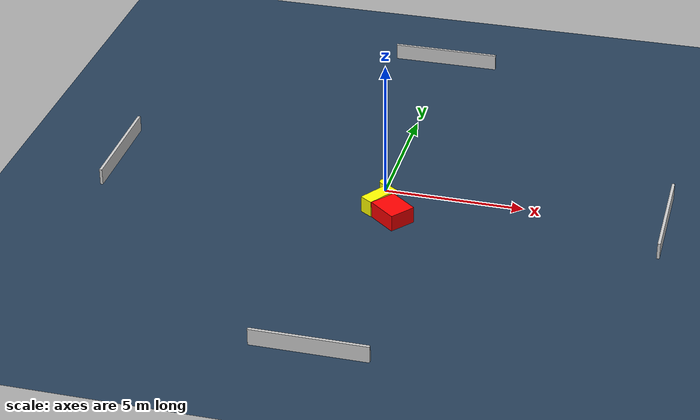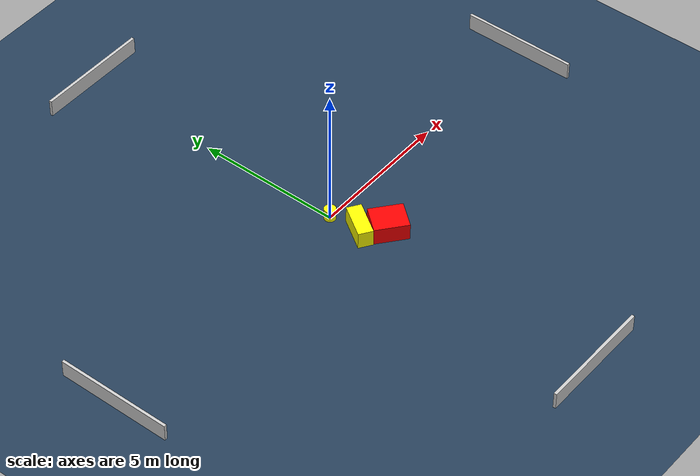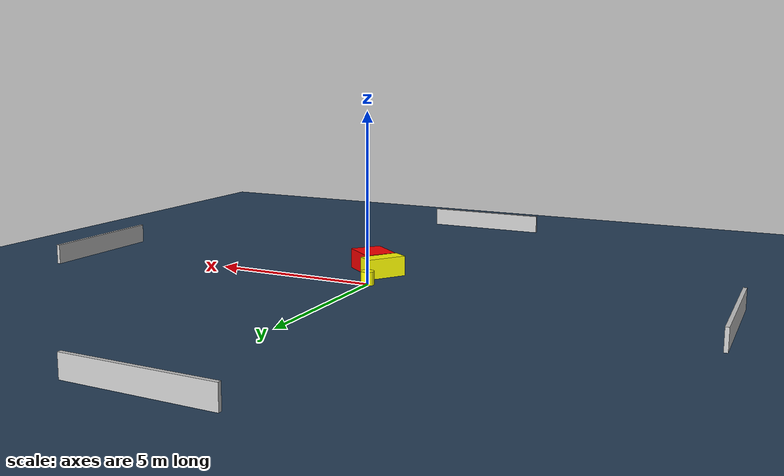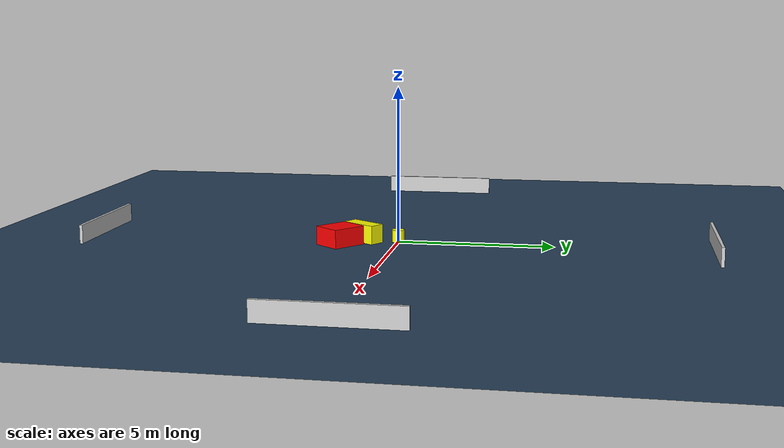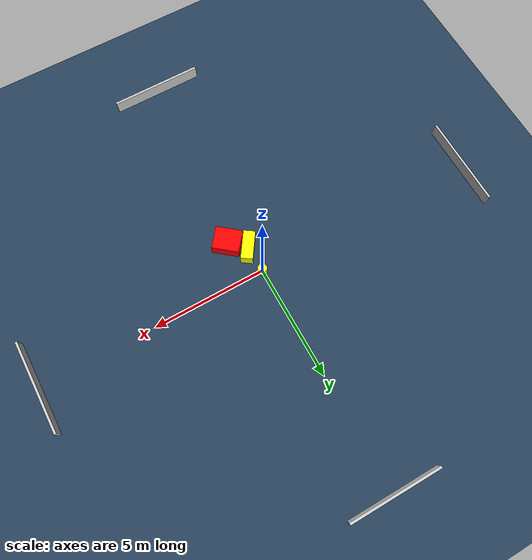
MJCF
<?xml version="1.0" ?>
<mujoco model="generated_environment">
  <option timestep="0.01" integrator="RK4" cone="elliptic"/>
  <default>
    <geom density="1"/>
  </default>
  <asset>
    <texture builtin="gradient" height="3072" name="skybox" rgb1="0.3 0.5 0.7" rgb2="0 0 0" type="skybox" width="512"/>
    <texture builtin="checker" height="300" name="groundplane" rgb1="0.2 0.3 0.4" rgb2="0.1 0.2 0.3" type="2d" width="300"/>
    <material name="groundplane" reflectance="0.2" texrepeat="5 5" texture="groundplane"/>
  </asset>
  <worldbody>
    <light dir="0 0 -1" directional="true" pos="0 0 1.5"/>
    <geom condim="3" friction="0.5 0.005 0.001" material="groundplane" name="floor" pos="0 0 0" size="0 0 0.05" type="plane"/>
    <body name="walls">
      <geom name="wall_1" condim="4" pos="-10.0 0.0 0.3" rgba="0.800000011920929 0.800000011920929 0.800000011920929 1.0" size="0.05 2.0 0.3" type="box"/>
      <geom name="wall_2" condim="4" pos="10.0 0.0 0.3" rgba="0.800000011920929 0.800000011920929 0.800000011920929 1.0" size="0.05 2.0 0.3" type="box"/>
      <geom name="wall_3" condim="4" pos="0.0 -10.0 0.3" rgba="0.800000011920929 0.800000011920929 0.800000011920929 1.0" size="2.0 0.05 0.3" type="box"/>
      <geom name="wall_4" condim="4" pos="0.0 10.0 0.3" rgba="0.800000011920929 0.800000011920929 0.800000011920929 1.0" size="2.0 0.05 0.3" type="box"/>
    </body>
    <body name="robot">
      <joint name="joint_x" type="slide" pos="0 0 0" axis="1 0 0"/>
      <joint name="joint_y" type="slide" pos="0 0 0" axis="0 1 0"/>
      <geom name="robot" type="cylinder" pos="0.0 0.0 0.2" size="0.2 0.2 0.0" mass="5.0" friction="1.0 0.005 0.0001" condim="4" rgba="1.0 1.0 0.0 1.0"/>
    </body>
    <body name="obstacle_1_movable">
      <geom name="obstacle_1_movable" condim="4" pos="0.05530994616480962 -1.1359023141013846 0.3" euler="0 0 56.09141118855976" friction="0.0 0.005 0.001" rgba="1.0 1.0 0.0 1.0" size="0.6178313691308823 0.25388866176769154 0.3" type="box" mass="0.1"/>
      <joint type="free"/>
    </body>
    <body name="obstacle_2_static">
      <geom name="obstacle_2_static" condim="4" pos="0.6978705793158196 -1.766321405857612 0.3" euler="0 0 230.9270249782173" friction="0.0 0.005 0.001" rgba="1.0 0.0 0.0 1.0" size="0.4865843325328079 0.5789947753169732 0.3" type="box"/>
    </body>
  </worldbody>
  <actuator>
    <motor name="actuator_x" joint="joint_x" gear="1" ctrlrange="-1 1"/>
    <motor name="actuator_y" joint="joint_y" gear="1" ctrlrange="-1 1"/>
  </actuator>
</mujoco>
